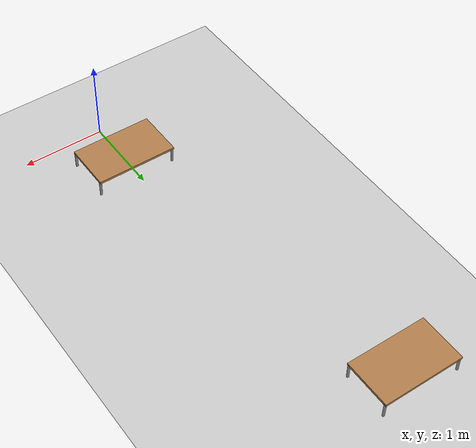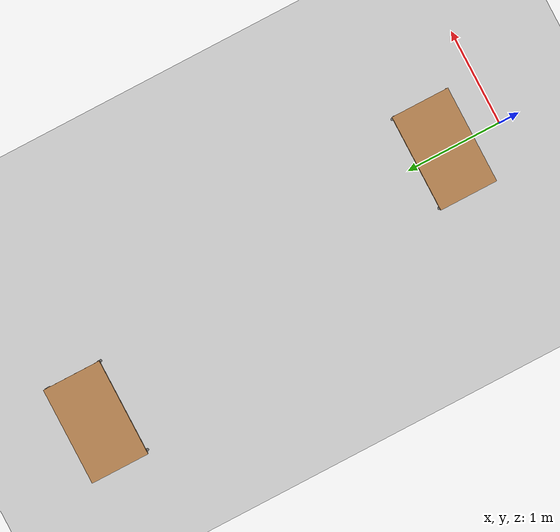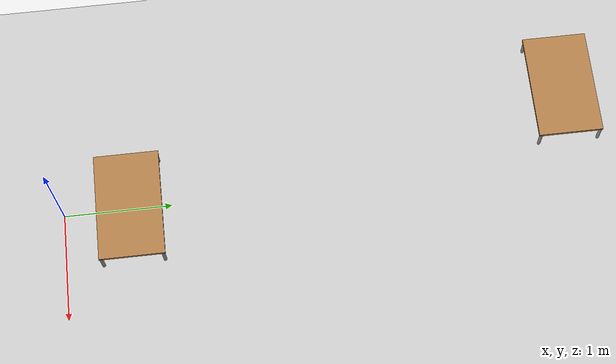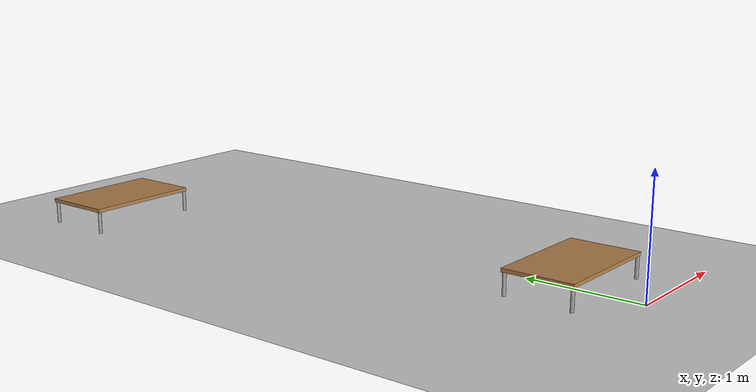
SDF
<sdf version="1.7">
 <world name="default">
  <light name="sun" type="directional">
   <pose>0 0 10 0 -0 0</pose>
   <diffuse>0.8 0.8 0.8 1</diffuse>
   <specular>0.2 0.2 0.2 1</specular>
   <attenuation>
    <range>1000</range>
    <constant>0.9</constant>
    <linear>0.01</linear>
    <quadratic>0.001</quadratic>
   </attenuation>
   <direction>-0.5 0.1 -0.9</direction>
   <spot><inner_angle>0</inner_angle><outer_angle>0</outer_angle><falloff>0</falloff></spot>
  </light>
  <model name="ground_plane">
   <static>1</static>
   <link name="link">
    <collision name="collision">
     <geometry><plane><normal>0 0 1</normal><size>100 100</size></plane></geometry>
     <surface>
      <contact><collide_bitmask>65535</collide_bitmask></contact>
      <friction><ode><mu>100</mu><mu2>50</mu2></ode></friction>
     </surface>
    </collision>
    <visual name="visual">
     <cast_shadows>0</cast_shadows>
     <geometry><plane><normal>0 0 1</normal><size>100 100</size></plane></geometry>
     <material>
      <script><uri>file://media/materials/scripts/gazebo.material</uri><name>Gazebo/Grey</name></script>
     </material>
    </visual>
   </link>
  </model>
  <gravity>0 0 -9.8</gravity>
  <magnetic_field>6e-06 2.3e-05 -4.2e-05</magnetic_field>
  <atmosphere type="adiabatic"/>
  <physics type="ode">
   <max_step_size>0.001</max_step_size>
   <real_time_factor>1</real_time_factor>
   <real_time_update_rate>1000</real_time_update_rate>
  </physics>
  <scene><ambient>0.4 0.4 0.4 1</ambient><background>0.7 0.7 0.7 1</background><shadows>1</shadows></scene>
  <spherical_coordinates>
   <surface_model>EARTH_WGS84</surface_model>
   <latitude_deg>0</latitude_deg>
   <longitude_deg>0</longitude_deg>
   <elevation>0</elevation>
   <heading_deg>0</heading_deg>
  </spherical_coordinates>
  <model name="table_socromatica">
   <link name="link">
    <inertial>
     <mass>1</mass>
     <inertia><ixx>1</ixx><ixy>0</ixy><ixz>0</ixz><iyy>1</iyy><iyz>0</iyz><izz>1</izz></inertia>
    </inertial>
    <visual name="front_left_leg">
     <pose>0.49 0.28 0.1 0 -0 0</pose>
     <geometry><cylinder><radius>0.015</radius><length>0.2</length></cylinder></geometry>
     <material>
      <script><uri>file://media/materials/scripts/gazebo.material</uri><name>Gazebo/Grey</name></script>
      <shader type="pixel"><normal_map>__default__</normal_map></shader>
      <ambient>0.3 0.3 0.3 1</ambient>
      <diffuse>0.7 0.7 0.7 1</diffuse>
      <specular>0.01 0.01 0.01 1</specular>
      <emissive>0 0 0 1</emissive>
     </material>
    </visual>
    <visual name="visual1">
     <pose>0 0 0.2 0 -0 0</pose>
     <geometry><box><size>1 0.6 0.03</size></box></geometry>
     <material>
      <script><uri>file://media/materials/scripts/gazebo.material</uri><name>Gazebo/Wood</name></script>
      <shader type="pixel"><normal_map>__default__</normal_map></shader>
      <ambient>1 1 1 1</ambient>
      <diffuse>1 1 1 1</diffuse>
      <specular>0.2 0.2 0.2 1</specular>
      <emissive>0 0 0 1</emissive>
     </material>
    </visual>
    <visual name="front_right_leg">
     <pose>0.49 -0.28 0.1 0 -0 0</pose>
     <geometry><cylinder><radius>0.015</radius><length>0.2</length></cylinder></geometry>
     <material>
      <script><uri>file://media/materials/scripts/gazebo.material</uri><name>Gazebo/Grey</name></script>
      <shader type="pixel"><normal_map>__default__</normal_map></shader>
      <ambient>0.3 0.3 0.3 1</ambient>
      <diffuse>0.7 0.7 0.7 1</diffuse>
      <specular>0.01 0.01 0.01 1</specular>
      <emissive>0 0 0 1</emissive>
     </material>
    </visual>
    <visual name="back_right_leg">
     <pose>-0.48 -0.28 0.1 0 -0 0</pose>
     <geometry><cylinder><radius>0.015</radius><length>0.2</length></cylinder></geometry>
     <material>
      <script><uri>file://media/materials/scripts/gazebo.material</uri><name>Gazebo/Grey</name></script>
      <shader type="pixel"><normal_map>__default__</normal_map></shader>
      <ambient>0.3 0.3 0.3 1</ambient>
      <diffuse>0.7 0.7 0.7 1</diffuse>
      <specular>0.01 0.01 0.01 1</specular>
      <emissive>0 0 0 1</emissive>
     </material>
    </visual>
    <visual name="back_left_leg">
     <pose>-0.48 0.28 0.1 0 -0 0</pose>
     <geometry><cylinder><radius>0.015</radius><length>0.2</length></cylinder></geometry>
     <material>
      <script><uri>file://media/materials/scripts/gazebo.material</uri><name>Gazebo/Grey</name></script>
      <shader type="pixel"><normal_map>__default__</normal_map></shader>
      <ambient>0.3 0.3 0.3 1</ambient>
      <diffuse>0.7 0.7 0.7 1</diffuse>
      <specular>0.01 0.01 0.01 1</specular>
      <emissive>0 0 0 1</emissive>
     </material>
    </visual>
    <collision name="surface">
     <pose>0 0 1 0 -0 0</pose>
     <geometry><box><size>1.5 0.8 0.03</size></box></geometry>
     <surface>
      <friction>
       <ode><mu>0.6</mu><mu2>0.6</mu2><fdir1>0 0 0</fdir1><slip1>0</slip1><slip2>0</slip2></ode>
       <torsional>
        <coefficient>1</coefficient>
        <patch_radius>0</patch_radius>
        <surface_radius>0</surface_radius>
        <use_patch_radius>1</use_patch_radius>
        <ode><slip>0</slip></ode>
       </torsional>
      </friction>
      <bounce><restitution_coefficient>0</restitution_coefficient><threshold>1e+06</threshold></bounce>
      <contact>
       <collide_without_contact>0</collide_without_contact>
       <collide_without_contact_bitmask>1</collide_without_contact_bitmask>
       <collide_bitmask>1</collide_bitmask>
       <ode>
        <soft_cfm>0</soft_cfm>
        <soft_erp>0.2</soft_erp>
        <kp>1e+13</kp>
        <kd>1</kd>
        <max_vel>0.01</max_vel>
        <min_depth>0</min_depth>
       </ode>
       <bullet>
        <split_impulse>1</split_impulse>
        <split_impulse_penetration_threshold>-0.01</split_impulse_penetration_threshold>
        <soft_cfm>0</soft_cfm>
        <soft_erp>0.2</soft_erp>
        <kp>1e+13</kp>
        <kd>1</kd>
       </bullet>
      </contact>
     </surface>
    </collision>
    <collision name="front_left_leg">
     <pose>0.68 0.38 0.5 0 -0 0</pose>
     <geometry><cylinder><radius>0.02</radius><length>1</length></cylinder></geometry>
     <surface>
      <friction>
       <ode><mu>1</mu><mu2>1</mu2><fdir1>0 0 0</fdir1><slip1>0</slip1><slip2>0</slip2></ode>
       <torsional>
        <coefficient>1</coefficient>
        <patch_radius>0</patch_radius>
        <surface_radius>0</surface_radius>
        <use_patch_radius>1</use_patch_radius>
        <ode><slip>0</slip></ode>
       </torsional>
      </friction>
      <bounce><restitution_coefficient>0</restitution_coefficient><threshold>1e+06</threshold></bounce>
      <contact>
       <collide_without_contact>0</collide_without_contact>
       <collide_without_contact_bitmask>1</collide_without_contact_bitmask>
       <collide_bitmask>1</collide_bitmask>
       <ode>
        <soft_cfm>0</soft_cfm>
        <soft_erp>0.2</soft_erp>
        <kp>1e+13</kp>
        <kd>1</kd>
        <max_vel>0.01</max_vel>
        <min_depth>0</min_depth>
       </ode>
       <bullet>
        <split_impulse>1</split_impulse>
        <split_impulse_penetration_threshold>-0.01</split_impulse_penetration_threshold>
        <soft_cfm>0</soft_cfm>
        <soft_erp>0.2</soft_erp>
        <kp>1e+13</kp>
        <kd>1</kd>
       </bullet>
      </contact>
     </surface>
    </collision>
    <collision name="front_right_leg">
     <pose>0.68 -0.38 0.5 0 -0 0</pose>
     <geometry><cylinder><radius>0.02</radius><length>1</length></cylinder></geometry>
     <surface>
      <friction>
       <ode><mu>1</mu><mu2>1</mu2><fdir1>0 0 0</fdir1><slip1>0</slip1><slip2>0</slip2></ode>
       <torsional>
        <coefficient>1</coefficient>
        <patch_radius>0</patch_radius>
        <surface_radius>0</surface_radius>
        <use_patch_radius>1</use_patch_radius>
        <ode><slip>0</slip></ode>
       </torsional>
      </friction>
      <bounce><restitution_coefficient>0</restitution_coefficient><threshold>1e+06</threshold></bounce>
      <contact>
       <collide_without_contact>0</collide_without_contact>
       <collide_without_contact_bitmask>1</collide_without_contact_bitmask>
       <collide_bitmask>1</collide_bitmask>
       <ode>
        <soft_cfm>0</soft_cfm>
        <soft_erp>0.2</soft_erp>
        <kp>1e+13</kp>
        <kd>1</kd>
        <max_vel>0.01</max_vel>
        <min_depth>0</min_depth>
       </ode>
       <bullet>
        <split_impulse>1</split_impulse>
        <split_impulse_penetration_threshold>-0.01</split_impulse_penetration_threshold>
        <soft_cfm>0</soft_cfm>
        <soft_erp>0.2</soft_erp>
        <kp>1e+13</kp>
        <kd>1</kd>
       </bullet>
      </contact>
     </surface>
    </collision>
    <collision name="back_right_leg">
     <pose>-0.68 -0.38 0.5 0 -0 0</pose>
     <geometry><cylinder><radius>0.02</radius><length>1</length></cylinder></geometry>
     <surface>
      <friction>
       <ode><mu>1</mu><mu2>1</mu2><fdir1>0 0 0</fdir1><slip1>0</slip1><slip2>0</slip2></ode>
       <torsional>
        <coefficient>1</coefficient>
        <patch_radius>0</patch_radius>
        <surface_radius>0</surface_radius>
        <use_patch_radius>1</use_patch_radius>
        <ode><slip>0</slip></ode>
       </torsional>
      </friction>
      <bounce><restitution_coefficient>0</restitution_coefficient><threshold>1e+06</threshold></bounce>
      <contact>
       <collide_without_contact>0</collide_without_contact>
       <collide_without_contact_bitmask>1</collide_without_contact_bitmask>
       <collide_bitmask>1</collide_bitmask>
       <ode>
        <soft_cfm>0</soft_cfm>
        <soft_erp>0.2</soft_erp>
        <kp>1e+13</kp>
        <kd>1</kd>
        <max_vel>0.01</max_vel>
        <min_depth>0</min_depth>
       </ode>
       <bullet>
        <split_impulse>1</split_impulse>
        <split_impulse_penetration_threshold>-0.01</split_impulse_penetration_threshold>
        <soft_cfm>0</soft_cfm>
        <soft_erp>0.2</soft_erp>
        <kp>1e+13</kp>
        <kd>1</kd>
       </bullet>
      </contact>
     </surface>
    </collision>
    <collision name="back_left_leg">
     <pose>-0.68 0.38 0.5 0 -0 0</pose>
     <geometry><cylinder><radius>0.02</radius><length>1</length></cylinder></geometry>
     <surface>
      <friction>
       <ode><mu>1</mu><mu2>1</mu2><fdir1>0 0 0</fdir1><slip1>0</slip1><slip2>0</slip2></ode>
       <torsional>
        <coefficient>1</coefficient>
        <patch_radius>0</patch_radius>
        <surface_radius>0</surface_radius>
        <use_patch_radius>1</use_patch_radius>
        <ode><slip>0</slip></ode>
       </torsional>
      </friction>
      <bounce><restitution_coefficient>0</restitution_coefficient><threshold>1e+06</threshold></bounce>
      <contact>
       <collide_without_contact>0</collide_without_contact>
       <collide_without_contact_bitmask>1</collide_without_contact_bitmask>
       <collide_bitmask>1</collide_bitmask>
       <ode>
        <soft_cfm>0</soft_cfm>
        <soft_erp>0.2</soft_erp>
        <kp>1e+13</kp>
        <kd>1</kd>
        <max_vel>0.01</max_vel>
        <min_depth>0</min_depth>
       </ode>
       <bullet>
        <split_impulse>1</split_impulse>
        <split_impulse_penetration_threshold>-0.01</split_impulse_penetration_threshold>
        <soft_cfm>0</soft_cfm>
        <soft_erp>0.2</soft_erp>
        <kp>1e+13</kp>
        <kd>1</kd>
       </bullet>
      </contact>
     </surface>
    </collision>
   </link>
   <static>1</static>
   <pose>0.024313 0.619987 0 0 -0 0</pose>
  </model>
  <model name="table_socromatica_1">
   <link name="link">
    <inertial>
     <mass>1</mass>
     <inertia><ixx>1</ixx><ixy>0</ixy><ixz>0</ixz><iyy>1</iyy><iyz>0</iyz><izz>1</izz></inertia>
    </inertial>
    <visual name="front_left_leg">
     <pose>0.49 0.28 0.1 0 -0 0</pose>
     <geometry><cylinder><radius>0.015</radius><length>0.2</length></cylinder></geometry>
     <material>
      <script><uri>file://media/materials/scripts/gazebo.material</uri><name>Gazebo/Grey</name></script>
      <shader type="pixel"><normal_map>__default__</normal_map></shader>
      <ambient>0.3 0.3 0.3 1</ambient>
      <diffuse>0.7 0.7 0.7 1</diffuse>
      <specular>0.01 0.01 0.01 1</specular>
      <emissive>0 0 0 1</emissive>
     </material>
    </visual>
    <visual name="visual1">
     <pose>0 0 0.2 0 -0 0</pose>
     <geometry><box><size>1 0.6 0.03</size></box></geometry>
     <material>
      <script><uri>file://media/materials/scripts/gazebo.material</uri><name>Gazebo/Wood</name></script>
      <shader type="pixel"><normal_map>__default__</normal_map></shader>
      <ambient>1 1 1 1</ambient>
      <diffuse>1 1 1 1</diffuse>
      <specular>0.2 0.2 0.2 1</specular>
      <emissive>0 0 0 1</emissive>
     </material>
    </visual>
    <visual name="front_right_leg">
     <pose>0.49 -0.28 0.1 0 -0 0</pose>
     <geometry><cylinder><radius>0.015</radius><length>0.2</length></cylinder></geometry>
     <material>
      <script><uri>file://media/materials/scripts/gazebo.material</uri><name>Gazebo/Grey</name></script>
      <shader type="pixel"><normal_map>__default__</normal_map></shader>
      <ambient>0.3 0.3 0.3 1</ambient>
      <diffuse>0.7 0.7 0.7 1</diffuse>
      <specular>0.01 0.01 0.01 1</specular>
      <emissive>0 0 0 1</emissive>
     </material>
    </visual>
    <visual name="back_right_leg">
     <pose>-0.48 -0.28 0.1 0 -0 0</pose>
     <geometry><cylinder><radius>0.015</radius><length>0.2</length></cylinder></geometry>
     <material>
      <script><uri>file://media/materials/scripts/gazebo.material</uri><name>Gazebo/Grey</name></script>
      <shader type="pixel"><normal_map>__default__</normal_map></shader>
      <ambient>0.3 0.3 0.3 1</ambient>
      <diffuse>0.7 0.7 0.7 1</diffuse>
      <specular>0.01 0.01 0.01 1</specular>
      <emissive>0 0 0 1</emissive>
     </material>
    </visual>
    <visual name="back_left_leg">
     <pose>-0.48 0.28 0.1 0 -0 0</pose>
     <geometry><cylinder><radius>0.015</radius><length>0.2</length></cylinder></geometry>
     <material>
      <script><uri>file://media/materials/scripts/gazebo.material</uri><name>Gazebo/Grey</name></script>
      <shader type="pixel"><normal_map>__default__</normal_map></shader>
      <ambient>0.3 0.3 0.3 1</ambient>
      <diffuse>0.7 0.7 0.7 1</diffuse>
      <specular>0.01 0.01 0.01 1</specular>
      <emissive>0 0 0 1</emissive>
     </material>
    </visual>
    <collision name="surface">
     <pose>0 0 1 0 -0 0</pose>
     <geometry><box><size>1.5 0.8 0.03</size></box></geometry>
     <surface>
      <friction>
       <ode><mu>0.6</mu><mu2>0.6</mu2><fdir1>0 0 0</fdir1><slip1>0</slip1><slip2>0</slip2></ode>
       <torsional>
        <coefficient>1</coefficient>
        <patch_radius>0</patch_radius>
        <surface_radius>0</surface_radius>
        <use_patch_radius>1</use_patch_radius>
        <ode><slip>0</slip></ode>
       </torsional>
      </friction>
      <bounce><restitution_coefficient>0</restitution_coefficient><threshold>1e+06</threshold></bounce>
      <contact>
       <collide_without_contact>0</collide_without_contact>
       <collide_without_contact_bitmask>1</collide_without_contact_bitmask>
       <collide_bitmask>1</collide_bitmask>
       <ode>
        <soft_cfm>0</soft_cfm>
        <soft_erp>0.2</soft_erp>
        <kp>1e+13</kp>
        <kd>1</kd>
        <max_vel>0.01</max_vel>
        <min_depth>0</min_depth>
       </ode>
       <bullet>
        <split_impulse>1</split_impulse>
        <split_impulse_penetration_threshold>-0.01</split_impulse_penetration_threshold>
        <soft_cfm>0</soft_cfm>
        <soft_erp>0.2</soft_erp>
        <kp>1e+13</kp>
        <kd>1</kd>
       </bullet>
      </contact>
     </surface>
    </collision>
    <collision name="front_left_leg">
     <pose>0.68 0.38 0.5 0 -0 0</pose>
     <geometry><cylinder><radius>0.02</radius><length>1</length></cylinder></geometry>
     <surface>
      <friction>
       <ode><mu>1</mu><mu2>1</mu2><fdir1>0 0 0</fdir1><slip1>0</slip1><slip2>0</slip2></ode>
       <torsional>
        <coefficient>1</coefficient>
        <patch_radius>0</patch_radius>
        <surface_radius>0</surface_radius>
        <use_patch_radius>1</use_patch_radius>
        <ode><slip>0</slip></ode>
       </torsional>
      </friction>
      <bounce><restitution_coefficient>0</restitution_coefficient><threshold>1e+06</threshold></bounce>
      <contact>
       <collide_without_contact>0</collide_without_contact>
       <collide_without_contact_bitmask>1</collide_without_contact_bitmask>
       <collide_bitmask>1</collide_bitmask>
       <ode>
        <soft_cfm>0</soft_cfm>
        <soft_erp>0.2</soft_erp>
        <kp>1e+13</kp>
        <kd>1</kd>
        <max_vel>0.01</max_vel>
        <min_depth>0</min_depth>
       </ode>
       <bullet>
        <split_impulse>1</split_impulse>
        <split_impulse_penetration_threshold>-0.01</split_impulse_penetration_threshold>
        <soft_cfm>0</soft_cfm>
        <soft_erp>0.2</soft_erp>
        <kp>1e+13</kp>
        <kd>1</kd>
       </bullet>
      </contact>
     </surface>
    </collision>
    <collision name="front_right_leg">
     <pose>0.68 -0.38 0.5 0 -0 0</pose>
     <geometry><cylinder><radius>0.02</radius><length>1</length></cylinder></geometry>
     <surface>
      <friction>
       <ode><mu>1</mu><mu2>1</mu2><fdir1>0 0 0</fdir1><slip1>0</slip1><slip2>0</slip2></ode>
       <torsional>
        <coefficient>1</coefficient>
        <patch_radius>0</patch_radius>
        <surface_radius>0</surface_radius>
        <use_patch_radius>1</use_patch_radius>
        <ode><slip>0</slip></ode>
       </torsional>
      </friction>
      <bounce><restitution_coefficient>0</restitution_coefficient><threshold>1e+06</threshold></bounce>
      <contact>
       <collide_without_contact>0</collide_without_contact>
       <collide_without_contact_bitmask>1</collide_without_contact_bitmask>
       <collide_bitmask>1</collide_bitmask>
       <ode>
        <soft_cfm>0</soft_cfm>
        <soft_erp>0.2</soft_erp>
        <kp>1e+13</kp>
        <kd>1</kd>
        <max_vel>0.01</max_vel>
        <min_depth>0</min_depth>
       </ode>
       <bullet>
        <split_impulse>1</split_impulse>
        <split_impulse_penetration_threshold>-0.01</split_impulse_penetration_threshold>
        <soft_cfm>0</soft_cfm>
        <soft_erp>0.2</soft_erp>
        <kp>1e+13</kp>
        <kd>1</kd>
       </bullet>
      </contact>
     </surface>
    </collision>
    <collision name="back_right_leg">
     <pose>-0.68 -0.38 0.5 0 -0 0</pose>
     <geometry><cylinder><radius>0.02</radius><length>1</length></cylinder></geometry>
     <surface>
      <friction>
       <ode><mu>1</mu><mu2>1</mu2><fdir1>0 0 0</fdir1><slip1>0</slip1><slip2>0</slip2></ode>
       <torsional>
        <coefficient>1</coefficient>
        <patch_radius>0</patch_radius>
        <surface_radius>0</surface_radius>
        <use_patch_radius>1</use_patch_radius>
        <ode><slip>0</slip></ode>
       </torsional>
      </friction>
      <bounce><restitution_coefficient>0</restitution_coefficient><threshold>1e+06</threshold></bounce>
      <contact>
       <collide_without_contact>0</collide_without_contact>
       <collide_without_contact_bitmask>1</collide_without_contact_bitmask>
       <collide_bitmask>1</collide_bitmask>
       <ode>
        <soft_cfm>0</soft_cfm>
        <soft_erp>0.2</soft_erp>
        <kp>1e+13</kp>
        <kd>1</kd>
        <max_vel>0.01</max_vel>
        <min_depth>0</min_depth>
       </ode>
       <bullet>
        <split_impulse>1</split_impulse>
        <split_impulse_penetration_threshold>-0.01</split_impulse_penetration_threshold>
        <soft_cfm>0</soft_cfm>
        <soft_erp>0.2</soft_erp>
        <kp>1e+13</kp>
        <kd>1</kd>
       </bullet>
      </contact>
     </surface>
    </collision>
    <collision name="back_left_leg">
     <pose>-0.68 0.38 0.5 0 -0 0</pose>
     <geometry><cylinder><radius>0.02</radius><length>1</length></cylinder></geometry>
     <surface>
      <friction>
       <ode><mu>1</mu><mu2>1</mu2><fdir1>0 0 0</fdir1><slip1>0</slip1><slip2>0</slip2></ode>
       <torsional>
        <coefficient>1</coefficient>
        <patch_radius>0</patch_radius>
        <surface_radius>0</surface_radius>
        <use_patch_radius>1</use_patch_radius>
        <ode><slip>0</slip></ode>
       </torsional>
      </friction>
      <bounce><restitution_coefficient>0</restitution_coefficient><threshold>1e+06</threshold></bounce>
      <contact>
       <collide_without_contact>0</collide_without_contact>
       <collide_without_contact_bitmask>1</collide_without_contact_bitmask>
       <collide_bitmask>1</collide_bitmask>
       <ode>
        <soft_cfm>0</soft_cfm>
        <soft_erp>0.2</soft_erp>
        <kp>1e+13</kp>
        <kd>1</kd>
        <max_vel>0.01</max_vel>
        <min_depth>0</min_depth>
       </ode>
       <bullet>
        <split_impulse>1</split_impulse>
        <split_impulse_penetration_threshold>-0.01</split_impulse_penetration_threshold>
        <soft_cfm>0</soft_cfm>
        <soft_erp>0.2</soft_erp>
        <kp>1e+13</kp>
        <kd>1</kd>
       </bullet>
      </contact>
     </surface>
    </collision>
   </link>
   <static>1</static>
   <pose>-0.731082 4.76161 0 0 -0 0</pose>
  </model>
 </world>
</sdf>
